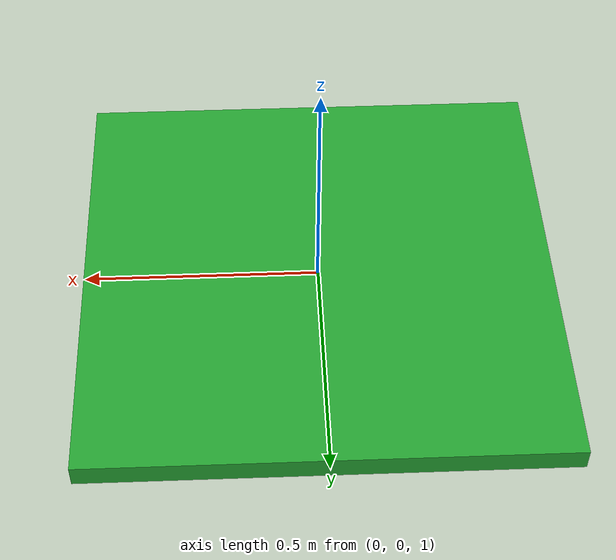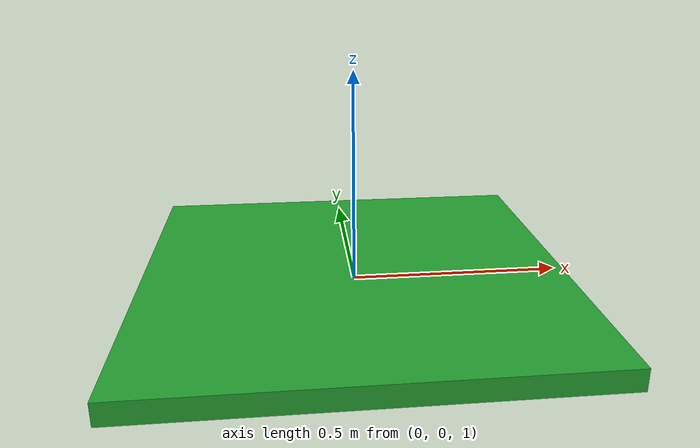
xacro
<?xml version="1.0" ?>
<robot xmlns:xacro="http://www.ros.org/wiki/xacro" name="mobile_platform">

    <!--Include files-->
    <xacro:include filename="gazebo.xacro" />
    <xacro:include filename="inertias.xacro" />
    <xacro:include filename="materials.xacro" />

    <!--Define properties-->

    <!--MACROS-->
    <!-- Simple box link  -->
    <xacro:macro name="box_link" params="name length width height material inertial:=true">
        <link name="${name}_link">
            <visual>
                <geometry>
                    <box size="${length} ${width} ${height}"/>
                </geometry>
                <material name="${material}"/>
            </visual>
            <collision>
                <geometry>
                    <box size="${length} ${width} ${height}"/>
                </geometry>
            </collision>

            <!-- Physical properties -->
            <xacro:if value="${inertial}">
                <xacro:box_inertial x="${length}" y="${width}" z="${height}" mass="0.1"/>
            </xacro:if>
        </link>
    </xacro:macro>

    <!-- Simple revolute joint -->
    <xacro:macro name="revolute_joint" params="name parent_name child_name origin axis">
        <joint name="${name}_joint" type="revolute">
            <parent link="${parent_name}_link"/>
            <child link="${child_name}_link"/>
            <origin xyz="${origin}"/>
            <axis xyz="${axis}"/>
            <limit upper="1.57" lower="-1.57" effort="1000" velocity="10"/>
            <dynamics damping="0.1" friction="0.1"/>
        </joint>
    </xacro:macro>

    <!-- Simple prismatic joint -->
    <xacro:macro name="prismatic_joint" params="name parent_name child_name origin axis">
        <joint name="${name}_joint" type="prismatic">
            <parent link="${parent_name}_link"/>
            <child link="${child_name}_link"/>
            <origin xyz="${origin}"/>
            <axis xyz="${axis}"/>
            <limit upper="3.0" lower="-3.0" effort="1000" velocity="10"/>
            <dynamics damping="0.1" friction="0.1"/>
        </joint>
    </xacro:macro>

    <!-- Transmission tags to actuate the platform -->
    <!-- It links an actuator to a joint -->
    <xacro:macro name="transmission" params="joint_name">
        <transmission name="${joint_name}_transmission">
            <type>transmission_interface/SimpleTransmission</type>

            <joint name="${joint_name}_joint">
                <!-- We can change the hardware interface to control position, velocity or effort -->
                <hardwareInterface>hardware_interface/PositionJointInterface</hardwareInterface>
            </joint>

            <actuator name="${joint_name}_actuator">
                <hardwareInterface>hardware_interface/PositionJointInterface</hardwareInterface>
                <mechanicalReduction>1</mechanicalReduction>
            </actuator>
        </transmission>
    </xacro:macro>

    <!-- Robot description -->
    <!-- Links -->
    <link name="world"/>

    <xacro:box_link name="base_tx" length="0" width="0" height="0" material="red"/>
    <xacro:box_link name="base_ty" length="0" width="0" height="0" material="red"/>
    <xacro:box_link name="base_tz" length="0" width="0" height="0" material="red"/>
    <xacro:box_link name="base_yaw" length="0" width="0" height="0" material="red"/>
    <xacro:box_link name="base_pitch" length="0" width="0" height="0" material="red"/>
    <xacro:box_link name="base_roll" length="0" width="0" height="0" material="red"/>
    <xacro:box_link name="board" length="1" width="1" height="0.05" material="green"/>

    <!-- Joints -->
    <joint name="fixed" type="fixed">
        <parent link="world"/>
        <child link="base_tx_link"/>
        <origin xyz="0 0 1."/>
    </joint>

    <xacro:prismatic_joint name="tx" parent_name="base_tx" child_name="base_ty" origin="0 0 0" axis="1 0 0"/>
    <xacro:prismatic_joint name="ty" parent_name="base_ty" child_name="base_tz" origin="0 0 0" axis="0 1 0"/>
    <xacro:prismatic_joint name="tz" parent_name="base_tz" child_name="base_yaw" origin="0 0 0" axis="0 0 1"/>
    <xacro:revolute_joint name="yaw" parent_name="base_yaw" child_name="base_pitch" origin="0 0 0" axis="0 0 1"/>
    <xacro:revolute_joint name="pitch" parent_name="base_pitch" child_name="base_roll" origin="0 0 0" axis="0 1 0"/>
    <xacro:revolute_joint name="roll" parent_name="base_roll" child_name="board" origin="0 0 0" axis="1 0 0"/>

    <!-- Transmissions -->
    <xacro:transmission joint_name="tx"/>
    <xacro:transmission joint_name="ty"/>
    <xacro:transmission joint_name="tz"/>
    <xacro:transmission joint_name="roll"/>
    <xacro:transmission joint_name="pitch"/>
    <xacro:transmission joint_name="yaw"/>

</robot>
